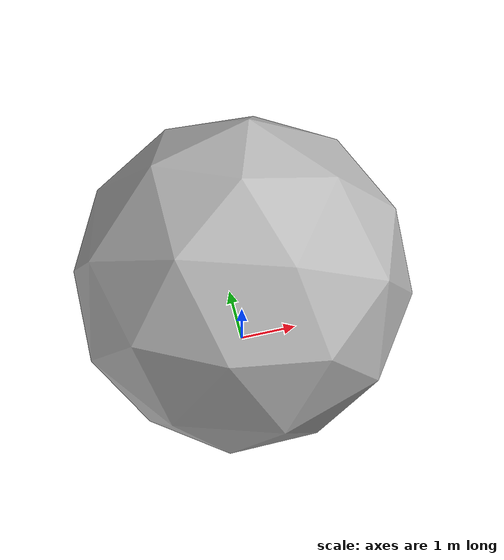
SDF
<?xml version="1.0" ?>
<sdf version="1.6">
  <model name="cave_tile_blocker">
    <static>true</static>
    <link name="link">
      <pose>0 0 0 1.570796 0 0</pose>
      <collision name="collision">
        <geometry>
          <mesh>
            <uri>model://cave_tile_blocker/meshes/cave_tile_blocker.obj</uri>
          </mesh>
        </geometry>
      </collision>
      <visual name="visual">
        <geometry>
          <mesh>
            <uri>model://cave_tile_blocker/meshes/cave_tile_blocker.obj</uri>
          </mesh>
        </geometry>
      </visual>
    </link>
  </model>
</sdf>
